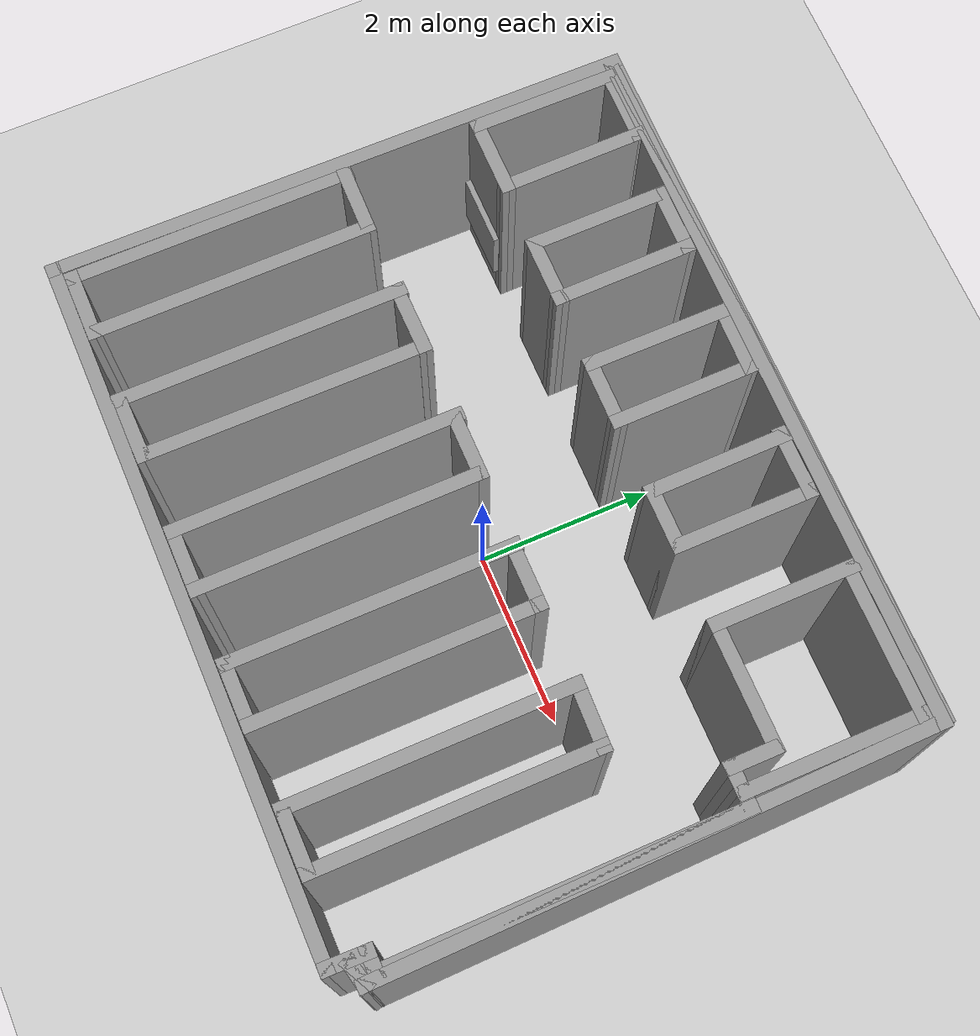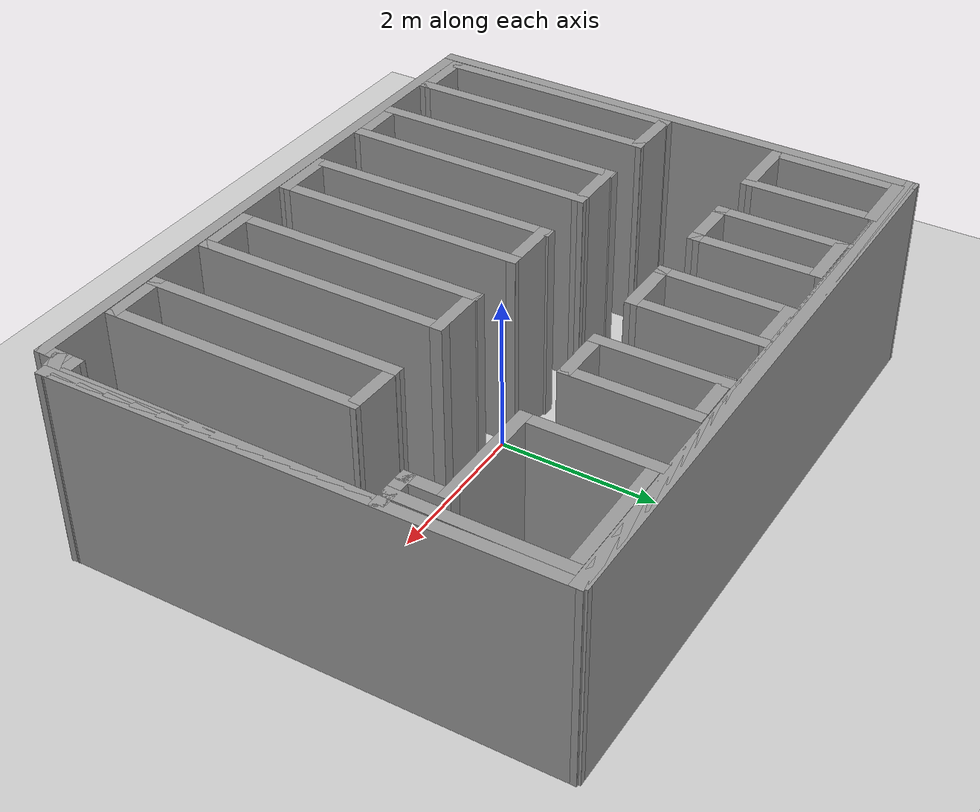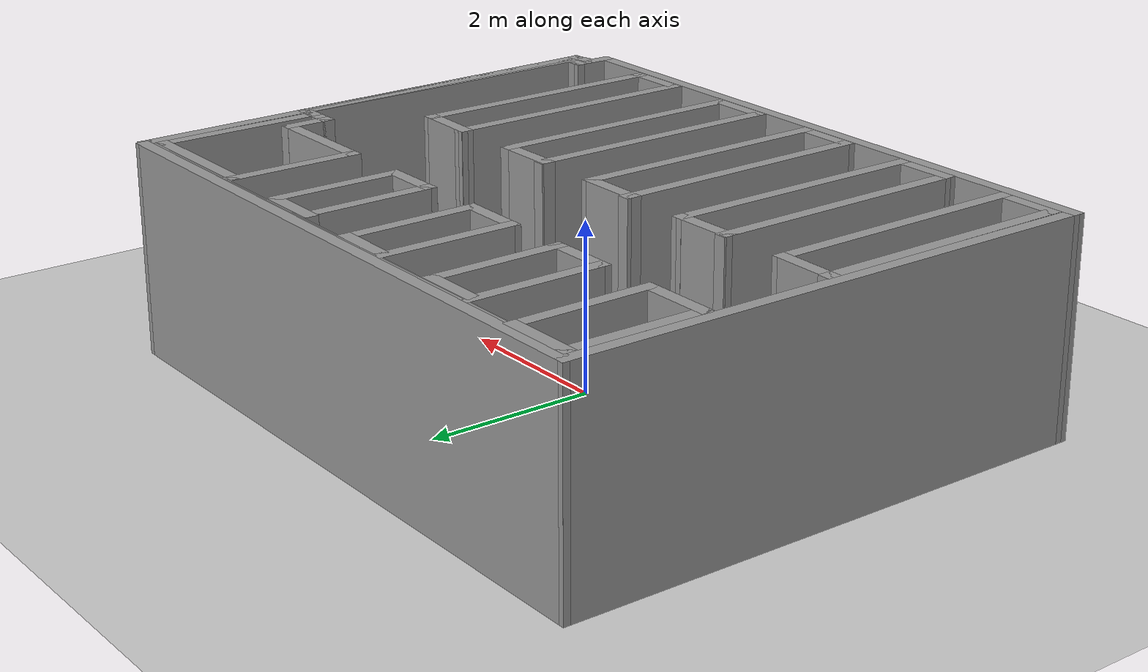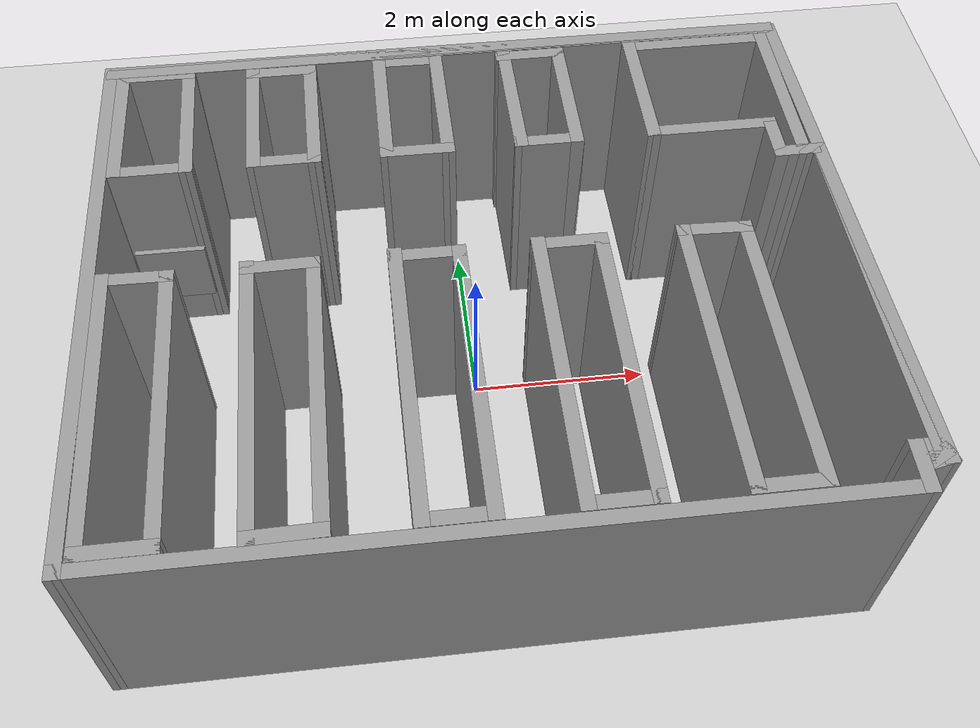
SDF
<?xml version="1.0" ?>
<sdf version="1.5">
  <world name="default">
    <!-- A global light source -->
    <include>
      <uri>model://sun</uri>
    </include>
    <!-- A ground plane -->
    <include>
      <uri>model://ground_plane</uri>
    </include>

    <include>
      <uri>model://change_class</uri>
    </include>
  </world>
</sdf>

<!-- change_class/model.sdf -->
<sdf version='1.6'>
  <model name='change_class'>
    <pose frame=''>0.029139 0.018903 0 0 -0 0</pose>
    <link name='Wall_1'>
      <collision name='Wall_1_Collision'>
        <geometry>
          <box>
            <size>1.65668 0.15 2.5</size>
          </box>
        </geometry>
        <pose frame=''>0 0 1.25 0 -0 0</pose>
      </collision>
      <visual name='Wall_1_Visual'>
        <pose frame=''>0 0 1.25 0 -0 0</pose>
        <geometry>
          <box>
            <size>1.65668 0.15 2.5</size>
          </box>
        </geometry>
        <material>
          <script>
            <uri>file://media/materials/scripts/gazebo.material</uri>
            <name>Gazebo/Grey</name>
          </script>
          <ambient>1 1 1 1</ambient>
        </material>
        <meta>
          <layer>0</layer>
        </meta>
      </visual>
      <pose frame=''>-3.78084 2.29432 0 0 -0 1.56316</pose>
    </link>
    <link name='Wall_10'>
      <collision name='Wall_10_Collision'>
        <geometry>
          <box>
            <size>1.59659 0.15 2.5</size>
          </box>
        </geometry>
        <pose frame=''>0 0 1.25 0 -0 0</pose>
      </collision>
      <visual name='Wall_10_Visual'>
        <pose frame=''>0 0 1.25 0 -0 0</pose>
        <geometry>
          <box>
            <size>1.59659 0.15 2.5</size>
          </box>
        </geometry>
        <material>
          <script>
            <uri>file://media/materials/scripts/gazebo.material</uri>
            <name>Gazebo/Grey</name>
          </script>
          <ambient>1 1 1 1</ambient>
        </material>
        <meta>
          <layer>0</layer>
        </meta>
      </visual>
      <pose frame=''>-1.63061 2.24868 0 0 -0 1.57989</pose>
    </link>
    <link name='Wall_11'>
      <collision name='Wall_11_Collision'>
        <geometry>
          <box>
            <size>0.800974 0.15 2.5</size>
          </box>
        </geometry>
        <pose frame=''>0 0 1.25 0 -0 0</pose>
      </collision>
      <visual name='Wall_11_Visual'>
        <pose frame=''>0 0 1.25 0 -0 0</pose>
        <geometry>
          <box>
            <size>0.800974 0.15 2.5</size>
          </box>
        </geometry>
        <material>
          <script>
            <uri>file://media/materials/scripts/gazebo.material</uri>
            <name>Gazebo/Grey</name>
          </script>
          <ambient>1 1 1 1</ambient>
        </material>
        <meta>
          <layer>0</layer>
        </meta>
      </visual>
      <pose frame=''>-1.96265 2.97195 0 0 -0 3.14159</pose>
    </link>
    <link name='Wall_15'>
      <collision name='Wall_15_Collision'>
        <geometry>
          <box>
            <size>1.64156 0.15 2.5</size>
          </box>
        </geometry>
        <pose frame=''>0 0 1.25 0 -0 0</pose>
      </collision>
      <visual name='Wall_15_Visual'>
        <pose frame=''>0 0 1.25 0 -0 0</pose>
        <geometry>
          <box>
            <size>1.64156 0.15 2.5</size>
          </box>
        </geometry>
        <material>
          <script>
            <uri>file://media/materials/scripts/gazebo.material</uri>
            <name>Gazebo/Grey</name>
          </script>
          <ambient>1 1 1 1</ambient>
        </material>
        <meta>
          <layer>0</layer>
        </meta>
      </visual>
      <pose frame=''>-0.832476 2.266 0 0 -0 -1.5737</pose>
    </link>
    <link name='Wall_16'>
      <collision name='Wall_16_Collision'>
        <geometry>
          <box>
            <size>0.824445 0.15 2.5</size>
          </box>
        </geometry>
        <pose frame=''>0 0 1.25 0 -0 0</pose>
      </collision>
      <visual name='Wall_16_Visual'>
        <pose frame=''>0 0 1.25 0 -0 0</pose>
        <geometry>
          <box>
            <size>0.824445 0.15 2.5</size>
          </box>
        </geometry>
        <material>
          <script>
            <uri>file://media/materials/scripts/gazebo.material</uri>
            <name>Gazebo/Grey</name>
          </script>
          <ambient>1 1 1 1</ambient>
        </material>
        <meta>
          <layer>0</layer>
        </meta>
      </visual>
      <pose frame=''>-0.497422 1.51807 0 0 -0 -0.00641</pose>
    </link>
    <link name='Wall_17'>
      <collision name='Wall_17_Collision'>
        <geometry>
          <box>
            <size>1.61614 0.15 2.5</size>
          </box>
        </geometry>
        <pose frame=''>0 0 1.25 0 -0 0</pose>
      </collision>
      <visual name='Wall_17_Visual'>
        <pose frame=''>0 0 1.25 0 -0 0</pose>
        <geometry>
          <box>
            <size>1.61614 0.15 2.5</size>
          </box>
        </geometry>
        <material>
          <script>
            <uri>file://media/materials/scripts/gazebo.material</uri>
            <name>Gazebo/Grey</name>
          </script>
          <ambient>1 1 1 1</ambient>
        </material>
        <meta>
          <layer>0</layer>
        </meta>
      </visual>
      <pose frame=''>-0.164395 2.24896 0 0 -0 1.57651</pose>
    </link>
    <link name='Wall_18'>
      <collision name='Wall_18_Collision'>
        <geometry>
          <box>
            <size>0.805601 0.15 2.5</size>
          </box>
        </geometry>
        <pose frame=''>0 0 1.25 0 -0 0</pose>
      </collision>
      <visual name='Wall_18_Visual'>
        <pose frame=''>0 0 1.25 0 -0 0</pose>
        <geometry>
          <box>
            <size>0.805601 0.15 2.5</size>
          </box>
        </geometry>
        <material>
          <script>
            <uri>file://media/materials/scripts/gazebo.material</uri>
            <name>Gazebo/Grey</name>
          </script>
          <ambient>1 1 1 1</ambient>
        </material>
        <meta>
          <layer>0</layer>
        </meta>
      </visual>
      <pose frame=''>-0.496334 2.98777 0 0 -0 3.12405</pose>
    </link>
    <link name='Wall_2'>
      <collision name='Wall_2_Collision'>
        <geometry>
          <box>
            <size>0.897854 0.15 2.5</size>
          </box>
        </geometry>
        <pose frame=''>0 0 1.25 0 -0 0</pose>
      </collision>
      <visual name='Wall_2_Visual'>
        <pose frame=''>0 0 1.25 0 -0 0</pose>
        <geometry>
          <box>
            <size>0.897854 0.15 2.5</size>
          </box>
        </geometry>
        <material>
          <script>
            <uri>file://media/materials/scripts/gazebo.material</uri>
            <name>Gazebo/Grey</name>
          </script>
          <ambient>1 1 1 1</ambient>
        </material>
        <meta>
          <layer>0</layer>
        </meta>
      </visual>
      <pose frame=''>-3.40134 3.04757 0 0 -0 0</pose>
    </link>
    <link name='Wall_20'>
      <collision name='Wall_20_Collision'>
        <geometry>
          <box>
            <size>1.59905 0.15 2.5</size>
          </box>
        </geometry>
        <pose frame=''>0 0 1.25 0 -0 0</pose>
      </collision>
      <visual name='Wall_20_Visual'>
        <pose frame=''>0 0 1.25 0 -0 0</pose>
        <geometry>
          <box>
            <size>1.59905 0.15 2.5</size>
          </box>
        </geometry>
        <material>
          <script>
            <uri>file://media/materials/scripts/gazebo.material</uri>
            <name>Gazebo/Grey</name>
          </script>
          <ambient>1 1 1 1</ambient>
        </material>
        <meta>
          <layer>0</layer>
        </meta>
      </visual>
      <pose frame=''>0.642166 2.24602 0 0 -0 -1.56286</pose>
    </link>
    <link name='Wall_21'>
      <collision name='Wall_21_Collision'>
        <geometry>
          <box>
            <size>0.771 0.15 2.5</size>
          </box>
        </geometry>
        <pose frame=''>0 0 1.25 0 -0 0</pose>
      </collision>
      <visual name='Wall_21_Visual'>
        <pose frame=''>0 0 1.25 0 -0 0</pose>
        <geometry>
          <box>
            <size>0.771 0.15 2.5</size>
          </box>
        </geometry>
        <material>
          <script>
            <uri>file://media/materials/scripts/gazebo.material</uri>
            <name>Gazebo/Grey</name>
          </script>
          <ambient>1 1 1 1</ambient>
        </material>
        <meta>
          <layer>0</layer>
        </meta>
      </visual>
      <pose frame=''>0.958416 1.52152 0 0 -0 0</pose>
    </link>
    <link name='Wall_22'>
      <collision name='Wall_22_Collision'>
        <geometry>
          <box>
            <size>1.5875 0.15 2.5</size>
          </box>
        </geometry>
        <pose frame=''>0 0 1.25 0 -0 0</pose>
      </collision>
      <visual name='Wall_22_Visual'>
        <pose frame=''>0 0 1.25 0 -0 0</pose>
        <geometry>
          <box>
            <size>1.5875 0.15 2.5</size>
          </box>
        </geometry>
        <material>
          <script>
            <uri>file://media/materials/scripts/gazebo.material</uri>
            <name>Gazebo/Grey</name>
          </script>
          <ambient>1 1 1 1</ambient>
        </material>
        <meta>
          <layer>0</layer>
        </meta>
      </visual>
      <pose frame=''>1.26892 2.24027 0 0 -0 1.5708</pose>
    </link>
    <link name='Wall_23'>
      <collision name='Wall_23_Collision'>
        <geometry>
          <box>
            <size>0.8055 0.15 2.5</size>
          </box>
        </geometry>
        <pose frame=''>0 0 1.25 0 -0 0</pose>
      </collision>
      <visual name='Wall_23_Visual'>
        <pose frame=''>0 0 1.25 0 -0 0</pose>
        <geometry>
          <box>
            <size>0.8055 0.15 2.5</size>
          </box>
        </geometry>
        <material>
          <script>
            <uri>file://media/materials/scripts/gazebo.material</uri>
            <name>Gazebo/Grey</name>
          </script>
          <ambient>1 1 1 1</ambient>
        </material>
        <meta>
          <layer>0</layer>
        </meta>
      </visual>
      <pose frame=''>0.941166 2.95902 0 0 -0 3.14159</pose>
    </link>
    <link name='Wall_25'>
      <collision name='Wall_25_Collision'>
        <geometry>
          <box>
            <size>1.622 0.15 2.5</size>
          </box>
        </geometry>
        <pose frame=''>0 0 1.25 0 -0 0</pose>
      </collision>
      <visual name='Wall_25_Visual'>
        <pose frame=''>0 0 1.25 0 -0 0</pose>
        <geometry>
          <box>
            <size>1.622 0.15 2.5</size>
          </box>
        </geometry>
        <material>
          <script>
            <uri>file://media/materials/scripts/gazebo.material</uri>
            <name>Gazebo/Grey</name>
          </script>
          <ambient>1 1 1 1</ambient>
        </material>
        <meta>
          <layer>0</layer>
        </meta>
      </visual>
      <pose frame=''>2.13142 2.25752 0 0 -0 -1.5708</pose>
    </link>
    <link name='Wall_26'>
      <collision name='Wall_26_Collision'>
        <geometry>
          <box>
            <size>1.4725 0.15 2.5</size>
          </box>
        </geometry>
        <pose frame=''>0 0 1.25 0 -0 0</pose>
      </collision>
      <visual name='Wall_26_Visual'>
        <pose frame=''>0 0 1.25 0 -0 0</pose>
        <geometry>
          <box>
            <size>1.4725 0.15 2.5</size>
          </box>
        </geometry>
        <material>
          <script>
            <uri>file://media/materials/scripts/gazebo.material</uri>
            <name>Gazebo/Grey</name>
          </script>
          <ambient>1 1 1 1</ambient>
        </material>
        <meta>
          <layer>0</layer>
        </meta>
      </visual>
      <pose frame=''>2.79267 1.52152 0 0 -0 0</pose>
    </link>
    <link name='Wall_27'>
      <collision name='Wall_27_Collision'>
        <geometry>
          <box>
            <size>0.610575 0.15 2.5</size>
          </box>
        </geometry>
        <pose frame=''>0 0 1.25 0 -0 0</pose>
      </collision>
      <visual name='Wall_27_Visual'>
        <pose frame=''>0 0 1.25 0 -0 0</pose>
        <geometry>
          <box>
            <size>0.610575 0.15 2.5</size>
          </box>
        </geometry>
        <material>
          <script>
            <uri>file://media/materials/scripts/gazebo.material</uri>
            <name>Gazebo/Grey</name>
          </script>
          <ambient>1 1 1 1</ambient>
        </material>
        <meta>
          <layer>0</layer>
        </meta>
      </visual>
      <pose frame=''>3.45392 1.29152 0 0 -0 -1.5708</pose>
    </link>
    <link name='Wall_28'>
      <collision name='Wall_28_Collision'>
        <geometry>
          <box>
            <size>0.4145 0.15 2.5</size>
          </box>
        </geometry>
        <pose frame=''>0 0 1.25 0 -0 0</pose>
      </collision>
      <visual name='Wall_28_Visual'>
        <pose frame=''>0 0 1.25 0 -0 0</pose>
        <geometry>
          <box>
            <size>0.4145 0.15 2.5</size>
          </box>
        </geometry>
        <material>
          <script>
            <uri>file://media/materials/scripts/gazebo.material</uri>
            <name>Gazebo/Grey</name>
          </script>
          <ambient>1 1 1 1</ambient>
        </material>
        <meta>
          <layer>0</layer>
        </meta>
      </visual>
      <pose frame=''>3.58617 1.06152 0 0 -0 0</pose>
    </link>
    <link name='Wall_29'>
      <collision name='Wall_29_Collision'>
        <geometry>
          <box>
            <size>2.04764 0.15 2.5</size>
          </box>
        </geometry>
        <pose frame=''>0 0 1.25 0 -0 0</pose>
      </collision>
      <visual name='Wall_29_Visual'>
        <pose frame=''>0 0 1.25 0 -0 0</pose>
        <geometry>
          <box>
            <size>2.04764 0.15 2.5</size>
          </box>
        </geometry>
        <material>
          <script>
            <uri>file://media/materials/scripts/gazebo.material</uri>
            <name>Gazebo/Grey</name>
          </script>
          <ambient>1 1 1 1</ambient>
        </material>
        <meta>
          <layer>0</layer>
        </meta>
      </visual>
      <pose frame=''>3.71842 2.01027 0 0 -0 1.5708</pose>
    </link>
    <link name='Wall_3'>
      <collision name='Wall_3_Collision'>
        <geometry>
          <box>
            <size>1.66804 0.15 2.5</size>
          </box>
        </geometry>
        <pose frame=''>0 0 1.25 0 -0 0</pose>
      </collision>
      <visual name='Wall_3_Visual'>
        <pose frame=''>0 0 1.25 0 -0 0</pose>
        <geometry>
          <box>
            <size>1.66804 0.15 2.5</size>
          </box>
        </geometry>
        <material>
          <script>
            <uri>file://media/materials/scripts/gazebo.material</uri>
            <name>Gazebo/Grey</name>
          </script>
          <ambient>1 1 1 1</ambient>
        </material>
        <meta>
          <layer>0</layer>
        </meta>
      </visual>
      <pose frame=''>-3.02184 2.28857 0 0 -0 -1.56322</pose>
    </link>
    <link name='Wall_30'>
      <collision name='Wall_30_Collision'>
        <geometry>
          <box>
            <size>1.714 0.15 2.5</size>
          </box>
        </geometry>
        <pose frame=''>0 0 1.25 0 -0 0</pose>
      </collision>
      <visual name='Wall_30_Visual'>
        <pose frame=''>0 0 1.25 0 -0 0</pose>
        <geometry>
          <box>
            <size>1.714 0.15 2.5</size>
          </box>
        </geometry>
        <material>
          <script>
            <uri>file://media/materials/scripts/gazebo.material</uri>
            <name>Gazebo/Grey</name>
          </script>
          <ambient>1 1 1 1</ambient>
        </material>
        <meta>
          <layer>0</layer>
        </meta>
      </visual>
      <pose frame=''>2.93642 2.95902 0 0 -0 3.14159</pose>
    </link>
    <link name='Wall_32'>
      <collision name='Wall_32_Collision'>
        <geometry>
          <box>
            <size>3.19 0.15 2.5</size>
          </box>
        </geometry>
        <pose frame=''>0 0 1.25 0 -0 0</pose>
      </collision>
      <visual name='Wall_32_Visual'>
        <pose frame=''>0 0 1.25 0 -0 0</pose>
        <geometry>
          <box>
            <size>3.19 0.15 2.5</size>
          </box>
        </geometry>
        <material>
          <script>
            <uri>file://media/materials/scripts/gazebo.material</uri>
            <name>Gazebo/Grey</name>
          </script>
          <ambient>1 1 1 1</ambient>
        </material>
        <meta>
          <layer>0</layer>
        </meta>
      </visual>
      <pose frame=''>-3.80187 -1.48932 0 0 -0 -1.5708</pose>
    </link>
    <link name='Wall_33'>
      <collision name='Wall_33_Collision'>
        <geometry>
          <box>
            <size>0.81 0.15 2.5</size>
          </box>
        </geometry>
        <pose frame=''>0 0 1.25 0 -0 0</pose>
      </collision>
      <visual name='Wall_33_Visual'>
        <pose frame=''>0 0 1.25 0 -0 0</pose>
        <geometry>
          <box>
            <size>0.81 0.15 2.5</size>
          </box>
        </geometry>
        <material>
          <script>
            <uri>file://media/materials/scripts/gazebo.material</uri>
            <name>Gazebo/Grey</name>
          </script>
          <ambient>1 1 1 1</ambient>
        </material>
        <meta>
          <layer>0</layer>
        </meta>
      </visual>
      <pose frame=''>-3.47187 -3.00932 0 0 -0 0</pose>
    </link>
    <link name='Wall_34'>
      <collision name='Wall_34_Collision'>
        <geometry>
          <box>
            <size>3.17002 0.15 2.5</size>
          </box>
        </geometry>
        <pose frame=''>0 0 1.25 0 -0 0</pose>
      </collision>
      <visual name='Wall_34_Visual'>
        <pose frame=''>0 0 1.25 0 -0 0</pose>
        <geometry>
          <box>
            <size>3.17002 0.15 2.5</size>
          </box>
        </geometry>
        <material>
          <script>
            <uri>file://media/materials/scripts/gazebo.material</uri>
            <name>Gazebo/Grey</name>
          </script>
          <ambient>1 1 1 1</ambient>
        </material>
        <meta>
          <layer>0</layer>
        </meta>
      </visual>
      <pose frame=''>-3.14687 -1.49932 0 0 -0 1.57411</pose>
    </link>
    <link name='Wall_35'>
      <collision name='Wall_35_Collision'>
        <geometry>
          <box>
            <size>0.800077 0.15 2.5</size>
          </box>
        </geometry>
        <pose frame=''>0 0 1.25 0 -0 0</pose>
      </collision>
      <visual name='Wall_35_Visual'>
        <pose frame=''>0 0 1.25 0 -0 0</pose>
        <geometry>
          <box>
            <size>0.800077 0.15 2.5</size>
          </box>
        </geometry>
        <material>
          <script>
            <uri>file://media/materials/scripts/gazebo.material</uri>
            <name>Gazebo/Grey</name>
          </script>
          <ambient>1 1 1 1</ambient>
        </material>
        <meta>
          <layer>0</layer>
        </meta>
      </visual>
      <pose frame=''>-3.47687 0.015681 0 0 -0 3.12621</pose>
    </link>
    <link name='Wall_37'>
      <collision name='Wall_37_Collision'>
        <geometry>
          <box>
            <size>3.21002 0.15 2.5</size>
          </box>
        </geometry>
        <pose frame=''>0 0 1.25 0 -0 0</pose>
      </collision>
      <visual name='Wall_37_Visual'>
        <pose frame=''>0 0 1.25 0 -0 0</pose>
        <geometry>
          <box>
            <size>3.21002 0.15 2.5</size>
          </box>
        </geometry>
        <material>
          <script>
            <uri>file://media/materials/scripts/gazebo.material</uri>
            <name>Gazebo/Grey</name>
          </script>
          <ambient>1 1 1 1</ambient>
        </material>
        <meta>
          <layer>0</layer>
        </meta>
      </visual>
      <pose frame=''>-2.34687 -1.48932 0 0 -0 -1.56753</pose>
    </link>
    <link name='Wall_38'>
      <collision name='Wall_38_Collision'>
        <geometry>
          <box>
            <size>0.800077 0.15 2.5</size>
          </box>
        </geometry>
        <pose frame=''>0 0 1.25 0 -0 0</pose>
      </collision>
      <visual name='Wall_38_Visual'>
        <pose frame=''>0 0 1.25 0 -0 0</pose>
        <geometry>
          <box>
            <size>0.800077 0.15 2.5</size>
          </box>
        </geometry>
        <material>
          <script>
            <uri>file://media/materials/scripts/gazebo.material</uri>
            <name>Gazebo/Grey</name>
          </script>
          <ambient>1 1 1 1</ambient>
        </material>
        <meta>
          <layer>0</layer>
        </meta>
      </visual>
      <pose frame=''>-2.01687 -3.01432 0 0 -0 0.015383</pose>
    </link>
    <link name='Wall_39'>
      <collision name='Wall_39_Collision'>
        <geometry>
          <box>
            <size>3.19002 0.15 2.5</size>
          </box>
        </geometry>
        <pose frame=''>0 0 1.25 0 -0 0</pose>
      </collision>
      <visual name='Wall_39_Visual'>
        <pose frame=''>0 0 1.25 0 -0 0</pose>
        <geometry>
          <box>
            <size>3.19002 0.15 2.5</size>
          </box>
        </geometry>
        <material>
          <script>
            <uri>file://media/materials/scripts/gazebo.material</uri>
            <name>Gazebo/Grey</name>
          </script>
          <ambient>1 1 1 1</ambient>
        </material>
        <meta>
          <layer>0</layer>
        </meta>
      </visual>
      <pose frame=''>-1.68687 -1.48932 0 0 -0 1.56751</pose>
    </link>
    <link name='Wall_4'>
      <collision name='Wall_4_Collision'>
        <geometry>
          <box>
            <size>0.909 0.15 2.5</size>
          </box>
        </geometry>
        <pose frame=''>0 0 1.25 0 -0 0</pose>
      </collision>
      <visual name='Wall_4_Visual'>
        <pose frame=''>0 0 1.25 0 -0 0</pose>
        <geometry>
          <box>
            <size>0.909 0.15 2.5</size>
          </box>
        </geometry>
        <material>
          <script>
            <uri>file://media/materials/scripts/gazebo.material</uri>
            <name>Gazebo/Grey</name>
          </script>
          <ambient>1 1 1 1</ambient>
        </material>
        <meta>
          <layer>0</layer>
        </meta>
      </visual>
      <pose frame=''>-3.39559 1.52957 0 0 -0 3.14159</pose>
    </link>
    <link name='Wall_40'>
      <collision name='Wall_40_Collision'>
        <geometry>
          <box>
            <size>0.820075 0.15 2.5</size>
          </box>
        </geometry>
        <pose frame=''>0 0 1.25 0 -0 0</pose>
      </collision>
      <visual name='Wall_40_Visual'>
        <pose frame=''>0 0 1.25 0 -0 0</pose>
        <geometry>
          <box>
            <size>0.820075 0.15 2.5</size>
          </box>
        </geometry>
        <material>
          <script>
            <uri>file://media/materials/scripts/gazebo.material</uri>
            <name>Gazebo/Grey</name>
          </script>
          <ambient>1 1 1 1</ambient>
        </material>
        <meta>
          <layer>0</layer>
        </meta>
      </visual>
      <pose frame=''>-2.01687 0.025681 0 0 -0 -3.12667</pose>
    </link>
    <link name='Wall_42'>
      <collision name='Wall_42_Collision'>
        <geometry>
          <box>
            <size>3.21002 0.15 2.5</size>
          </box>
        </geometry>
        <pose frame=''>0 0 1.25 0 -0 0</pose>
      </collision>
      <visual name='Wall_42_Visual'>
        <pose frame=''>0 0 1.25 0 -0 0</pose>
        <geometry>
          <box>
            <size>3.21002 0.15 2.5</size>
          </box>
        </geometry>
        <material>
          <script>
            <uri>file://media/materials/scripts/gazebo.material</uri>
            <name>Gazebo/Grey</name>
          </script>
          <ambient>1 1 1 1</ambient>
        </material>
        <meta>
          <layer>0</layer>
        </meta>
      </visual>
      <pose frame=''>-0.841874 -1.47932 0 0 -0 -1.56426</pose>
    </link>
    <link name='Wall_43'>
      <collision name='Wall_43_Collision'>
        <geometry>
          <box>
            <size>0.800077 0.15 2.5</size>
          </box>
        </geometry>
        <pose frame=''>0 0 1.25 0 -0 0</pose>
      </collision>
      <visual name='Wall_43_Visual'>
        <pose frame=''>0 0 1.25 0 -0 0</pose>
        <geometry>
          <box>
            <size>0.800077 0.15 2.5</size>
          </box>
        </geometry>
        <material>
          <script>
            <uri>file://media/materials/scripts/gazebo.material</uri>
            <name>Gazebo/Grey</name>
          </script>
          <ambient>1 1 1 1</ambient>
        </material>
        <meta>
          <layer>0</layer>
        </meta>
      </visual>
      <pose frame=''>-0.506874 -3.00932 0 0 -0 0</pose>
    </link>
    <link name='Wall_44'>
      <collision name='Wall_44_Collision'>
        <geometry>
          <box>
            <size>3.18002 0.15 2.5</size>
          </box>
        </geometry>
        <pose frame=''>0 0 1.25 0 -0 0</pose>
      </collision>
      <visual name='Wall_44_Visual'>
        <pose frame=''>0 0 1.25 0 -0 0</pose>
        <geometry>
          <box>
            <size>3.18002 0.15 2.5</size>
          </box>
        </geometry>
        <material>
          <script>
            <uri>file://media/materials/scripts/gazebo.material</uri>
            <name>Gazebo/Grey</name>
          </script>
          <ambient>1 1 1 1</ambient>
        </material>
        <meta>
          <layer>0</layer>
        </meta>
      </visual>
      <pose frame=''>-0.186874 -1.49432 0 0 -0 1.5741</pose>
    </link>
    <link name='Wall_45'>
      <collision name='Wall_45_Collision'>
        <geometry>
          <box>
            <size>0.810303 0.15 2.5</size>
          </box>
        </geometry>
        <pose frame=''>0 0 1.25 0 -0 0</pose>
      </collision>
      <visual name='Wall_45_Visual'>
        <pose frame=''>0 0 1.25 0 -0 0</pose>
        <geometry>
          <box>
            <size>0.810303 0.15 2.5</size>
          </box>
        </geometry>
        <material>
          <script>
            <uri>file://media/materials/scripts/gazebo.material</uri>
            <name>Gazebo/Grey</name>
          </script>
          <ambient>1 1 1 1</ambient>
        </material>
        <meta>
          <layer>0</layer>
        </meta>
      </visual>
      <pose frame=''>-0.521874 0.020681 0 0 -0 3.14159</pose>
    </link>
    <link name='Wall_47'>
      <collision name='Wall_47_Collision'>
        <geometry>
          <box>
            <size>3.2 0.15 2.5</size>
          </box>
        </geometry>
        <pose frame=''>0 0 1.25 0 -0 0</pose>
      </collision>
      <visual name='Wall_47_Visual'>
        <pose frame=''>0 0 1.25 0 -0 0</pose>
        <geometry>
          <box>
            <size>3.2 0.15 2.5</size>
          </box>
        </geometry>
        <material>
          <script>
            <uri>file://media/materials/scripts/gazebo.material</uri>
            <name>Gazebo/Grey</name>
          </script>
          <ambient>1 1 1 1</ambient>
        </material>
        <meta>
          <layer>0</layer>
        </meta>
      </visual>
      <pose frame=''>0.628126 -1.48432 0 0 -0 -1.5708</pose>
    </link>
    <link name='Wall_48'>
      <collision name='Wall_48_Collision'>
        <geometry>
          <box>
            <size>0.8 0.15 2.5</size>
          </box>
        </geometry>
        <pose frame=''>0 0 1.25 0 -0 0</pose>
      </collision>
      <visual name='Wall_48_Visual'>
        <pose frame=''>0 0 1.25 0 -0 0</pose>
        <geometry>
          <box>
            <size>0.8 0.15 2.5</size>
          </box>
        </geometry>
        <material>
          <script>
            <uri>file://media/materials/scripts/gazebo.material</uri>
            <name>Gazebo/Grey</name>
          </script>
          <ambient>1 1 1 1</ambient>
        </material>
        <meta>
          <layer>0</layer>
        </meta>
      </visual>
      <pose frame=''>0.953126 -3.00932 0 0 -0 0</pose>
    </link>
    <link name='Wall_49'>
      <collision name='Wall_49_Collision'>
        <geometry>
          <box>
            <size>3.18007 0.15 2.5</size>
          </box>
        </geometry>
        <pose frame=''>0 0 1.25 0 -0 0</pose>
      </collision>
      <visual name='Wall_49_Visual'>
        <pose frame=''>0 0 1.25 0 -0 0</pose>
        <geometry>
          <box>
            <size>3.18007 0.15 2.5</size>
          </box>
        </geometry>
        <material>
          <script>
            <uri>file://media/materials/scripts/gazebo.material</uri>
            <name>Gazebo/Grey</name>
          </script>
          <ambient>1 1 1 1</ambient>
        </material>
        <meta>
          <layer>0</layer>
        </meta>
      </visual>
      <pose frame=''>1.27813 -1.49432 0 0 -0 1.5708</pose>
    </link>
    <link name='Wall_50'>
      <collision name='Wall_50_Collision'>
        <geometry>
          <box>
            <size>0.8 0.15 2.5</size>
          </box>
        </geometry>
        <pose frame=''>0 0 1.25 0 -0 0</pose>
      </collision>
      <visual name='Wall_50_Visual'>
        <pose frame=''>0 0 1.25 0 -0 0</pose>
        <geometry>
          <box>
            <size>0.8 0.15 2.5</size>
          </box>
        </geometry>
        <material>
          <script>
            <uri>file://media/materials/scripts/gazebo.material</uri>
            <name>Gazebo/Grey</name>
          </script>
          <ambient>1 1 1 1</ambient>
        </material>
        <meta>
          <layer>0</layer>
        </meta>
      </visual>
      <pose frame=''>0.953126 0.020681 0 0 -0 3.14159</pose>
    </link>
    <link name='Wall_52'>
      <collision name='Wall_52_Collision'>
        <geometry>
          <box>
            <size>3.20002 0.15 2.5</size>
          </box>
        </geometry>
        <pose frame=''>0 0 1.25 0 -0 0</pose>
      </collision>
      <visual name='Wall_52_Visual'>
        <pose frame=''>0 0 1.25 0 -0 0</pose>
        <geometry>
          <box>
            <size>3.20002 0.15 2.5</size>
          </box>
        </geometry>
        <material>
          <script>
            <uri>file://media/materials/scripts/gazebo.material</uri>
            <name>Gazebo/Grey</name>
          </script>
          <ambient>1 1 1 1</ambient>
        </material>
        <meta>
          <layer>0</layer>
        </meta>
      </visual>
      <pose frame=''>2.14813 -1.48432 0 0 -0 -1.5708</pose>
    </link>
    <link name='Wall_53'>
      <collision name='Wall_53_Collision'>
        <geometry>
          <box>
            <size>0.8 0.15 2.5</size>
          </box>
        </geometry>
        <pose frame=''>0 0 1.25 0 -0 0</pose>
      </collision>
      <visual name='Wall_53_Visual'>
        <pose frame=''>0 0 1.25 0 -0 0</pose>
        <geometry>
          <box>
            <size>0.8 0.15 2.5</size>
          </box>
        </geometry>
        <material>
          <script>
            <uri>file://media/materials/scripts/gazebo.material</uri>
            <name>Gazebo/Grey</name>
          </script>
          <ambient>1 1 1 1</ambient>
        </material>
        <meta>
          <layer>0</layer>
        </meta>
      </visual>
      <pose frame=''>2.47313 -3.00932 0 0 -0 0</pose>
    </link>
    <link name='Wall_54'>
      <collision name='Wall_54_Collision'>
        <geometry>
          <box>
            <size>3.18007 0.15 2.5</size>
          </box>
        </geometry>
        <pose frame=''>0 0 1.25 0 -0 0</pose>
      </collision>
      <visual name='Wall_54_Visual'>
        <pose frame=''>0 0 1.25 0 -0 0</pose>
        <geometry>
          <box>
            <size>3.18007 0.15 2.5</size>
          </box>
        </geometry>
        <material>
          <script>
            <uri>file://media/materials/scripts/gazebo.material</uri>
            <name>Gazebo/Grey</name>
          </script>
          <ambient>1 1 1 1</ambient>
        </material>
        <meta>
          <layer>0</layer>
        </meta>
      </visual>
      <pose frame=''>2.79813 -1.49432 0 0 -0 1.5708</pose>
    </link>
    <link name='Wall_55'>
      <collision name='Wall_55_Collision'>
        <geometry>
          <box>
            <size>0.800077 0.15 2.5</size>
          </box>
        </geometry>
        <pose frame=''>0 0 1.25 0 -0 0</pose>
      </collision>
      <visual name='Wall_55_Visual'>
        <pose frame=''>0 0 1.25 0 -0 0</pose>
        <geometry>
          <box>
            <size>0.800077 0.15 2.5</size>
          </box>
        </geometry>
        <material>
          <script>
            <uri>file://media/materials/scripts/gazebo.material</uri>
            <name>Gazebo/Grey</name>
          </script>
          <ambient>1 1 1 1</ambient>
        </material>
        <meta>
          <layer>0</layer>
        </meta>
      </visual>
      <pose frame=''>2.47313 0.030681 0 0 -0 3.11083</pose>
    </link>
    <link name='Wall_58'>
      <collision name='Wall_58_Collision'>
        <geometry>
          <box>
            <size>0.25 0.15 2.5</size>
          </box>
        </geometry>
        <pose frame=''>0 0 1.25 0 -0 0</pose>
      </collision>
      <visual name='Wall_58_Visual'>
        <pose frame=''>0 0 1.25 0 -0 0</pose>
        <geometry>
          <box>
            <size>0.25 0.15 2.5</size>
          </box>
        </geometry>
        <material>
          <script>
            <uri>file://media/materials/scripts/gazebo.material</uri>
            <name>Gazebo/Grey</name>
          </script>
          <ambient>1 1 1 1</ambient>
        </material>
        <meta>
          <layer>0</layer>
        </meta>
      </visual>
      <pose frame=''>3.76842 1.06152 0 0 -0 0</pose>
    </link>
    <link name='Wall_60'>
      <collision name='Wall_60_Collision'>
        <geometry>
          <box>
            <size>0.310078 0.15 2.5</size>
          </box>
        </geometry>
        <pose frame=''>0 0 1.25 0 -0 0</pose>
      </collision>
      <visual name='Wall_60_Visual'>
        <pose frame=''>0 0 1.25 0 -0 0</pose>
        <geometry>
          <box>
            <size>0.310078 0.15 2.5</size>
          </box>
        </geometry>
        <material>
          <script>
            <uri>file://media/materials/scripts/gazebo.material</uri>
            <name>Gazebo/Grey</name>
          </script>
          <ambient>1 1 1 1</ambient>
        </material>
        <meta>
          <layer>0</layer>
        </meta>
      </visual>
      <pose frame=''>3.79827 1.0611 0 0 -0 -0.005244</pose>
    </link>
    <link name='Wall_61'>
      <collision name='Wall_61_Collision'>
        <geometry>
          <box>
            <size>3.97 0.15 2.5</size>
          </box>
        </geometry>
        <pose frame=''>0 0 1.25 0 -0 0</pose>
      </collision>
      <visual name='Wall_61_Visual'>
        <pose frame=''>0 0 1.25 0 -0 0</pose>
        <geometry>
          <box>
            <size>3.97 0.15 2.5</size>
          </box>
        </geometry>
        <material>
          <script>
            <uri>file://media/materials/scripts/gazebo.material</uri>
            <name>Gazebo/Grey</name>
          </script>
          <ambient>1 1 1 1</ambient>
        </material>
        <meta>
          <layer>0</layer>
        </meta>
      </visual>
      <pose frame=''>3.88313 -0.849319 0 0 -0 -1.56818</pose>
    </link>
    <link name='Wall_62'>
      <collision name='Wall_62_Collision'>
        <geometry>
          <box>
            <size>0.350998 0.15 2.5</size>
          </box>
        </geometry>
        <pose frame=''>0 0 1.25 0 -0 0</pose>
      </collision>
      <visual name='Wall_62_Visual'>
        <pose frame=''>0 0 1.25 0 -0 0</pose>
        <geometry>
          <box>
            <size>0.350998 0.15 2.5</size>
          </box>
        </geometry>
        <material>
          <script>
            <uri>file://media/materials/scripts/gazebo.material</uri>
            <name>Gazebo/Grey</name>
          </script>
          <ambient>1 1 1 1</ambient>
        </material>
        <meta>
          <layer>0</layer>
        </meta>
      </visual>
      <pose frame=''>3.78813 -2.75932 0 0 -0 3.14159</pose>
    </link>
    <link name='Wall_63'>
      <collision name='Wall_63_Collision'>
        <geometry>
          <box>
            <size>0.560122 0.15 2.5</size>
          </box>
        </geometry>
        <pose frame=''>0 0 1.25 0 -0 0</pose>
      </collision>
      <visual name='Wall_63_Visual'>
        <pose frame=''>0 0 1.25 0 -0 0</pose>
        <geometry>
          <box>
            <size>0.560122 0.15 2.5</size>
          </box>
        </geometry>
        <material>
          <script>
            <uri>file://media/materials/scripts/gazebo.material</uri>
            <name>Gazebo/Grey</name>
          </script>
          <ambient>1 1 1 1</ambient>
        </material>
        <meta>
          <layer>0</layer>
        </meta>
      </visual>
      <pose frame=''>3.68313 -2.96432 0 0 -0 -1.59518</pose>
    </link>
    <link name='Wall_64'>
      <collision name='Wall_64_Collision'>
        <geometry>
          <box>
            <size>7.79001 0.15 2.5</size>
          </box>
        </geometry>
        <pose frame=''>0 0 1.25 0 -0 0</pose>
      </collision>
      <visual name='Wall_64_Visual'>
        <pose frame=''>0 0 1.25 0 -0 0</pose>
        <geometry>
          <box>
            <size>7.79001 0.15 2.5</size>
          </box>
        </geometry>
        <material>
          <script>
            <uri>file://media/materials/scripts/gazebo.material</uri>
            <name>Gazebo/Grey</name>
          </script>
          <ambient>1 1 1 1</ambient>
        </material>
        <meta>
          <layer>0</layer>
        </meta>
      </visual>
      <pose frame=''>-0.141874 -3.16432 0 0 -0 3.14028</pose>
    </link>
    <link name='Wall_65'>
      <collision name='Wall_65_Collision'>
        <geometry>
          <box>
            <size>6.48007 0.15 2.5</size>
          </box>
        </geometry>
        <pose frame=''>0 0 1.25 0 -0 0</pose>
      </collision>
      <visual name='Wall_65_Visual'>
        <pose frame=''>0 0 1.25 0 -0 0</pose>
        <geometry>
          <box>
            <size>6.48007 0.15 2.5</size>
          </box>
        </geometry>
        <material>
          <script>
            <uri>file://media/materials/scripts/gazebo.material</uri>
            <name>Gazebo/Grey</name>
          </script>
          <ambient>1 1 1 1</ambient>
        </material>
        <meta>
          <layer>0</layer>
        </meta>
      </visual>
      <pose frame=''>-3.94187 0.005681 0 0 -0 1.56448</pose>
    </link>
    <link name='Wall_66'>
      <collision name='Wall_66_Collision'>
        <geometry>
          <box>
            <size>7.9001 0.15 2.5</size>
          </box>
        </geometry>
        <pose frame=''>0 0 1.25 0 -0 0</pose>
      </collision>
      <visual name='Wall_66_Visual'>
        <pose frame=''>0 0 1.25 0 -0 0</pose>
        <geometry>
          <box>
            <size>7.9001 0.15 2.5</size>
          </box>
        </geometry>
        <material>
          <script>
            <uri>file://media/materials/scripts/gazebo.material</uri>
            <name>Gazebo/Grey</name>
          </script>
          <ambient>1 1 1 1</ambient>
        </material>
        <meta>
          <layer>0</layer>
        </meta>
      </visual>
      <pose frame=''>-0.046874 3.15568 0 0 -0 -0.003871</pose>
    </link>
    <link name='Wall_67'>
      <collision name='Wall_67_Collision'>
        <geometry>
          <box>
            <size>7.88001 0.15 2.5</size>
          </box>
        </geometry>
        <pose frame=''>0 0 1.25 0 -0 0</pose>
      </collision>
      <visual name='Wall_67_Visual'>
        <pose frame=''>0 0 1.25 0 -0 0</pose>
        <geometry>
          <box>
            <size>7.88001 0.15 2.5</size>
          </box>
        </geometry>
        <material>
          <script>
            <uri>file://media/materials/scripts/gazebo.material</uri>
            <name>Gazebo/Grey</name>
          </script>
          <ambient>1 1 1 1</ambient>
        </material>
        <meta>
          <layer>0</layer>
        </meta>
      </visual>
      <pose frame=''>-0.036874 3.13568 0 0 -0 -3.1403</pose>
    </link>
    <link name='Wall_68'>
      <collision name='Wall_68_Collision'>
        <geometry>
          <box>
            <size>7.91003 0.15 2.5</size>
          </box>
        </geometry>
        <pose frame=''>0 0 1.25 0 -0 0</pose>
      </collision>
      <visual name='Wall_68_Visual'>
        <pose frame=''>0 0 1.25 0 -0 0</pose>
        <geometry>
          <box>
            <size>7.91003 0.15 2.5</size>
          </box>
        </geometry>
        <material>
          <script>
            <uri>file://media/materials/scripts/gazebo.material</uri>
            <name>Gazebo/Grey</name>
          </script>
          <ambient>1 1 1 1</ambient>
        </material>
        <meta>
          <layer>0</layer>
        </meta>
      </visual>
      <pose frame=''>-0.021874 3.12068 0 0 -0 -0.002577</pose>
    </link>
    <link name='Wall_69'>
      <collision name='Wall_69_Collision'>
        <geometry>
          <box>
            <size>6.16067 0.15 2.5</size>
          </box>
        </geometry>
        <pose frame=''>0 0 1.25 0 -0 0</pose>
      </collision>
      <visual name='Wall_69_Visual'>
        <pose frame=''>0 0 1.25 0 -0 0</pose>
        <geometry>
          <box>
            <size>6.16067 0.15 2.5</size>
          </box>
        </geometry>
        <material>
          <script>
            <uri>file://media/materials/scripts/gazebo.material</uri>
            <name>Gazebo/Grey</name>
          </script>
          <ambient>1 1 1 1</ambient>
        </material>
        <meta>
          <layer>0</layer>
        </meta>
      </visual>
      <pose frame=''>3.90313 0.105681 0 0 -0 -1.55582</pose>
    </link>
    <link name='Wall_70'>
      <collision name='Wall_70_Collision'>
        <geometry>
          <box>
            <size>0.385372 0.15 2.5</size>
          </box>
        </geometry>
        <pose frame=''>0 0 1.25 0 -0 0</pose>
      </collision>
      <visual name='Wall_70_Visual'>
        <pose frame=''>0 0 1.25 0 -0 0</pose>
        <geometry>
          <box>
            <size>0.385372 0.15 2.5</size>
          </box>
        </geometry>
        <material>
          <script>
            <uri>file://media/materials/scripts/gazebo.material</uri>
            <name>Gazebo/Grey</name>
          </script>
          <ambient>1 1 1 1</ambient>
        </material>
        <meta>
          <layer>0</layer>
        </meta>
      </visual>
      <pose frame=''>3.83313 -2.92432 0 0 -0 -2.92753</pose>
    </link>
    <link name='Wall_71'>
      <collision name='Wall_71_Collision'>
        <geometry>
          <box>
            <size>0.387065 0.15 2.5</size>
          </box>
        </geometry>
        <pose frame=''>0 0 1.25 0 -0 0</pose>
      </collision>
      <visual name='Wall_71_Visual'>
        <pose frame=''>0 0 1.25 0 -0 0</pose>
        <geometry>
          <box>
            <size>0.387065 0.15 2.5</size>
          </box>
        </geometry>
        <material>
          <script>
            <uri>file://media/materials/scripts/gazebo.material</uri>
            <name>Gazebo/Grey</name>
          </script>
          <ambient>1 1 1 1</ambient>
        </material>
        <meta>
          <layer>0</layer>
        </meta>
      </visual>
      <pose frame=''>3.82313 -2.89432 0 0 -0 0.482513</pose>
    </link>
    <link name='Wall_8'>
      <collision name='Wall_8_Collision'>
        <geometry>
          <box>
            <size>1.64258 0.15 2.5</size>
          </box>
        </geometry>
        <pose frame=''>0 0 1.25 0 -0 0</pose>
      </collision>
      <visual name='Wall_8_Visual'>
        <pose frame=''>0 0 1.25 0 -0 0</pose>
        <geometry>
          <box>
            <size>1.64258 0.15 2.5</size>
          </box>
        </geometry>
        <material>
          <script>
            <uri>file://media/materials/scripts/gazebo.material</uri>
            <name>Gazebo/Grey</name>
          </script>
          <ambient>1 1 1 1</ambient>
        </material>
        <meta>
          <layer>0</layer>
        </meta>
      </visual>
      <pose frame=''>-2.29141 2.27169 0 0 -0 -1.56639</pose>
    </link>
    <link name='Wall_9'>
      <collision name='Wall_9_Collision'>
        <geometry>
          <box>
            <size>0.814091 0.15 2.5</size>
          </box>
        </geometry>
        <pose frame=''>0 0 1.25 0 -0 0</pose>
      </collision>
      <visual name='Wall_9_Visual'>
        <pose frame=''>0 0 1.25 0 -0 0</pose>
        <geometry>
          <box>
            <size>0.814091 0.15 2.5</size>
          </box>
        </geometry>
        <material>
          <script>
            <uri>file://media/materials/scripts/gazebo.material</uri>
            <name>Gazebo/Grey</name>
          </script>
          <ambient>1 1 1 1</ambient>
        </material>
        <meta>
          <layer>0</layer>
        </meta>
      </visual>
      <pose frame=''>-1.95608 1.52541 0 0 -0 0</pose>
    </link>
    <link name='Window_0'>
      <collision name='Window_0_Collision'>
        <geometry>
          <box>
            <size>0.8 0.17 0.8</size>
          </box>
        </geometry>
        <pose frame=''>0 0 0.4 0 -0 0</pose>
      </collision>
      <visual name='Window_0_Visual'>
        <pose frame=''>0 0 0.4 0 -0 0</pose>
        <geometry>
          <box>
            <size>0.8 0.17 0.8</size>
          </box>
        </geometry>
        <material>
          <script>
            <uri>file://media/materials/scripts/gazebo.material</uri>
            <name>Gazebo/Grey</name>
          </script>
        </material>
      </visual>
      <pose frame=''>-3.418 1.47619 0.5 0 -0 0</pose>
    </link>
    <static>1</static>
  </model>
</sdf>
